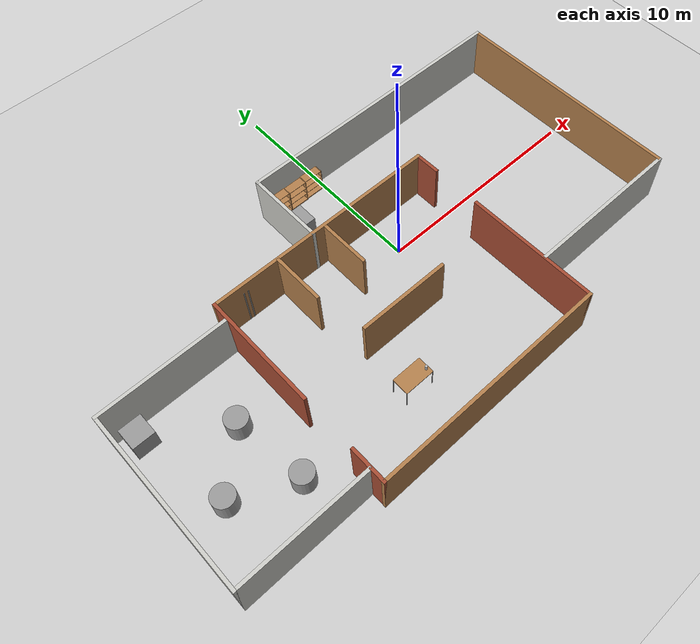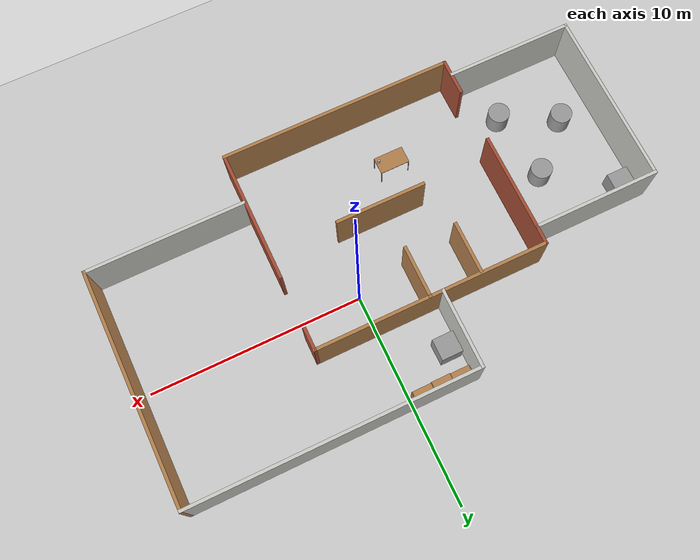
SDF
<sdf version="1.6">
 <world name="default">
  <model name="ground_plane">
   <static>1</static>
   <link name="link">
    <collision name="collision">
     <geometry><plane><normal>0 0 1</normal><size>100 100</size></plane></geometry>
     <surface><friction><ode><mu>100</mu><mu2>50</mu2></ode></friction></surface>
    </collision>
    <visual name="visual">
     <cast_shadows>0</cast_shadows>
     <geometry><plane><normal>0 0 1</normal><size>100 100</size></plane></geometry>
     <material>
      <script><uri>file://media/materials/scripts/gazebo.material</uri><name>Gazebo/Grey</name></script>
     </material>
    </visual>
   </link>
  </model>
  <model name="test_world">
   <pose>-1.78434 -1.17966 0 0 -0 0</pose>
   <link name="Wall_1">
    <collision name="Wall_1_Collision">
     <geometry><box><size>4.25 0.15 2.5</size></box></geometry>
     <pose>0 0 1.25 0 -0 0</pose>
    </collision>
    <visual name="Wall_1_Visual">
     <pose>0 0 1.25 0 -0 0</pose>
     <geometry><box><size>4.25 0.15 2.5</size></box></geometry>
     <material>
      <script><uri>file://media/materials/scripts/gazebo.material</uri><name>Gazebo/Wood</name></script>
      <ambient>1 1 1 1</ambient>
     </material>
    </visual>
    <pose>-0.615659 -1.70034 0 0 -0 3.14159</pose>
   </link>
   <link name="Wall_12">
    <collision name="Wall_12_Collision">
     <geometry><box><size>11 0.15 2.5</size></box></geometry>
     <pose>0 0 1.25 0 -0 0</pose>
    </collision>
    <visual name="Wall_12_Visual">
     <pose>0 0 1.25 0 -0 0</pose>
     <geometry><box><size>11 0.15 2.5</size></box></geometry>
     <material>
      <script><uri>file://media/materials/scripts/gazebo.material</uri><name>Gazebo/Wood</name></script>
      <ambient>1 1 1 1</ambient>
     </material>
    </visual>
    <pose>-0.768184 -6.59875 0 0 -0 0</pose>
   </link>
   <link name="Wall_15">
    <collision name="Wall_15_Collision">
     <geometry><box><size>11 0.15 2.5</size></box></geometry>
     <pose>0 0 1.25 0 -0 0</pose>
    </collision>
    <visual name="Wall_15_Visual">
     <pose>0 0 1.25 0 -0 0</pose>
     <geometry><box><size>11 0.15 2.5</size></box></geometry>
     <material>
      <script><uri>file://media/materials/scripts/gazebo.material</uri><name>Gazebo/Wood</name></script>
      <ambient>1 1 1 1</ambient>
     </material>
    </visual>
    <pose>-0.768184 3.00125 0 0 -0 0</pose>
   </link>
   <link name="Wall_19">
    <collision name="Wall_19_Collision">
     <geometry><box><size>1.25 0.15 2.5</size></box></geometry>
     <pose>0 0 1.25 0 -0 0</pose>
    </collision>
    <visual name="Wall_19_Visual">
     <pose>0 0 1.25 0 -0 0</pose>
     <geometry><box><size>1.25 0.15 2.5</size></box></geometry>
     <material>
      <script><uri>file://media/materials/scripts/gazebo.material</uri><name>Gazebo/Bricks</name></script>
      <ambient>1 1 1 1</ambient>
     </material>
    </visual>
    <pose>4.65682 2.45125 0 0 0 -1.5708</pose>
   </link>
   <link name="Wall_21">
    <collision name="Wall_21_Collision">
     <geometry><box><size>6.25 0.15 2.5</size></box></geometry>
     <pose>0 0 1.25 0 -0 0</pose>
    </collision>
    <visual name="Wall_21_Visual">
     <pose>0 0 1.25 0 -0 0</pose>
     <geometry><box><size>6.25 0.15 2.5</size></box></geometry>
     <material>
      <script><uri>file://media/materials/scripts/gazebo.material</uri><name>Gazebo/Bricks</name></script>
      <ambient>1 1 1 1</ambient>
     </material>
    </visual>
    <pose>4.65682 -3.54875 0 0 -0 1.5708</pose>
   </link>
   <link name="Wall_23">
    <collision name="Wall_23_Collision">
     <geometry><box><size>5.5 0.15 2.5</size></box></geometry>
     <pose>0 0 1.25 0 -0 0</pose>
    </collision>
    <visual name="Wall_23_Visual">
     <pose>0 0 1.25 0 -0 0</pose>
     <geometry><box><size>5.5 0.15 2.5</size></box></geometry>
     <material>
      <script><uri>file://media/materials/scripts/gazebo.material</uri><name>Gazebo/Bricks</name></script>
      <ambient>1 1 1 1</ambient>
     </material>
    </visual>
    <pose>-6.19318 0.326247 0 0 0 -1.5708</pose>
   </link>
   <link name="Wall_25">
    <collision name="Wall_25_Collision">
     <geometry><box><size>1.75 0.15 2.5</size></box></geometry>
     <pose>0 0 1.25 0 -0 0</pose>
    </collision>
    <visual name="Wall_25_Visual">
     <pose>0 0 1.25 0 -0 0</pose>
     <geometry><box><size>1.75 0.15 2.5</size></box></geometry>
     <material>
      <script><uri>file://media/materials/scripts/gazebo.material</uri><name>Gazebo/Bricks</name></script>
      <ambient>1 1 1 1</ambient>
     </material>
    </visual>
    <pose>-6.19318 -5.79875 0 0 -0 1.5708</pose>
   </link>
   <link name="Wall_30">
    <collision name="Wall_30_Collision">
     <geometry><box><size>6 0.15 2.5</size></box></geometry>
     <pose>0 0 1.25 0 -0 0</pose>
    </collision>
    <visual name="Wall_30_Visual">
     <pose>0 0 1.25 0 -0 0</pose>
     <geometry><box><size>6 0.15 2.5</size></box></geometry>
     <material>
      <script><uri>file://media/materials/scripts/gazebo.material</uri><name>Gazebo/CeilingTiled</name></script>
      <ambient>1 1 1 1</ambient>
     </material>
    </visual>
    <pose>-9.15006 2.17634 0 0 -0 3.14159</pose>
   </link>
   <link name="Wall_31">
    <collision name="Wall_31_Collision">
     <geometry><box><size>8.25 0.15 2.5</size></box></geometry>
     <pose>0 0 1.25 0 -0 0</pose>
    </collision>
    <visual name="Wall_31_Visual">
     <pose>0 0 1.25 0 -0 0</pose>
     <geometry><box><size>8.25 0.15 2.5</size></box></geometry>
     <material>
      <script><uri>file://media/materials/scripts/gazebo.material</uri><name>Gazebo/CeilingTiled</name></script>
      <ambient>0.435294 0.796078 0.67451 1</ambient>
     </material>
    </visual>
    <pose>-12.0751 -1.87366 0 0 0 -1.5708</pose>
   </link>
   <link name="Wall_32">
    <collision name="Wall_32_Collision">
     <geometry><box><size>6 0.15 2.5</size></box></geometry>
     <pose>0 0 1.25 0 -0 0</pose>
    </collision>
    <visual name="Wall_32_Visual">
     <pose>0 0 1.25 0 -0 0</pose>
     <geometry><box><size>6 0.15 2.5</size></box></geometry>
     <material>
      <script><uri>file://media/materials/scripts/gazebo.material</uri><name>Gazebo/CeilingTiled</name></script>
      <ambient>1 1 1 1</ambient>
     </material>
    </visual>
    <pose>-9.15006 -5.92366 0 0 -0 0</pose>
   </link>
   <link name="Wall_34">
    <collision name="Wall_34_Collision">
     <geometry><box><size>2.5 0.15 2.5</size></box></geometry>
     <pose>0 0 1.25 0 -0 0</pose>
    </collision>
    <visual name="Wall_34_Visual">
     <pose>0 0 1.25 0 -0 0</pose>
     <geometry><box><size>2.5 0.15 2.5</size></box></geometry>
     <material>
      <script><uri>file://media/materials/scripts/gazebo.material</uri><name>Gazebo/Wood</name></script>
      <ambient>1 1 1 1</ambient>
     </material>
    </visual>
    <pose>-3.10226 1.75436 0 0 0 -1.5708</pose>
   </link>
   <link name="Wall_37">
    <collision name="Wall_37_Collision">
     <geometry><box><size>2.5 0.15 2.5</size></box></geometry>
     <pose>0 0 1.25 0 -0 0</pose>
    </collision>
    <visual name="Wall_37_Visual">
     <pose>0 0 1.25 0 -0 0</pose>
     <geometry><box><size>2.5 0.15 2.5</size></box></geometry>
     <material>
      <script><uri>file://media/materials/scripts/gazebo.material</uri><name>Gazebo/Wood</name></script>
      <ambient>1 1 1 1</ambient>
     </material>
    </visual>
    <pose>-0.673547 1.80062 0 0 0 -1.5708</pose>
   </link>
   <link name="Wall_39">
    <collision name="Wall_39_Collision">
     <geometry><box><size>3.75 0.15 2.5</size></box></geometry>
     <pose>0 0 1.25 0 -0 0</pose>
    </collision>
    <visual name="Wall_39_Visual">
     <pose>0 0 1.25 0 -0 0</pose>
     <geometry><box><size>3.75 0.15 2.5</size></box></geometry>
     <material>
      <script><uri>file://media/materials/scripts/gazebo.material</uri><name>Gazebo/CeilingTiled</name></script>
      <ambient>1 1 1 1</ambient>
     </material>
    </visual>
    <pose>-1.27494 4.79875 0 0 -0 1.5708</pose>
   </link>
   <link name="Wall_40">
    <collision name="Wall_40_Collision">
     <geometry><box><size>13.5 0.15 2.5</size></box></geometry>
     <pose>0 0 1.25 0 -0 0</pose>
    </collision>
    <visual name="Wall_40_Visual">
     <pose>0 0 1.25 0 -0 0</pose>
     <geometry><box><size>13.5 0.15 2.5</size></box></geometry>
     <material>
      <script><uri>file://media/materials/scripts/gazebo.material</uri><name>Gazebo/CeilingTiled</name></script>
      <ambient>1 1 1 1</ambient>
     </material>
    </visual>
    <pose>5.40006 6.59875 0 0 -0 0</pose>
   </link>
   <link name="Wall_41">
    <collision name="Wall_41_Collision">
     <geometry><box><size>11 0.15 2.5</size></box></geometry>
     <pose>0 0 1.25 0 -0 0</pose>
    </collision>
    <visual name="Wall_41_Visual">
     <pose>0 0 1.25 0 -0 0</pose>
     <geometry><box><size>11 0.15 2.5</size></box></geometry>
     <material>
      <script><uri>file://media/materials/scripts/gazebo.material</uri><name>Gazebo/Wood</name></script>
      <ambient>1 1 1 1</ambient>
     </material>
    </visual>
    <pose>12.0751 1.17375 0 0 0 -1.5708</pose>
   </link>
   <link name="Wall_42">
    <collision name="Wall_42_Collision">
     <geometry><box><size>7.5 0.15 2.5</size></box></geometry>
     <pose>0 0 1.25 0 -0 0</pose>
    </collision>
    <visual name="Wall_42_Visual">
     <pose>0 0 1.25 0 -0 0</pose>
     <geometry><box><size>7.5 0.15 2.5</size></box></geometry>
     <material>
      <script><uri>file://media/materials/scripts/gazebo.material</uri><name>Gazebo/CeilingTiled</name></script>
      <ambient>1 1 1 1</ambient>
     </material>
    </visual>
    <pose>8.40006 -4.25125 0 0 -0 3.14159</pose>
   </link>
   <static>1</static>
  </model>
  <model name="table">
   <static>0</static>
   <link name="link">
    <collision name="surface">
     <pose>0 0 1 0 -0 0</pose>
     <geometry><box><size>1.5 0.8 0.03</size></box></geometry>
     <surface><friction><ode><mu>0.6</mu><mu2>0.6</mu2></ode></friction></surface>
    </collision>
    <visual name="visual1">
     <pose>0 0 1 0 -0 0</pose>
     <geometry><box><size>1.4 0.8 0.04</size></box></geometry>
     <material>
      <script><uri>file://media/materials/scripts/gazebo.material</uri><name>Gazebo/Wood</name></script>
     </material>
    </visual>
    <collision name="front_left_leg">
     <pose>0.68 0.38 0.5 0 -0 0</pose>
     <geometry><cylinder><radius>0.02</radius><length>1</length></cylinder></geometry>
    </collision>
    <visual name="front_left_leg">
     <pose>0.68 0.38 0.5 0 -0 0</pose>
     <geometry><cylinder><radius>0.02</radius><length>1</length></cylinder></geometry>
     <material>
      <script><uri>file://media/materials/scripts/gazebo.material</uri><name>Gazebo/Grey</name></script>
     </material>
    </visual>
    <collision name="front_right_leg">
     <pose>0.68 -0.38 0.5 0 -0 0</pose>
     <geometry><cylinder><radius>0.02</radius><length>1</length></cylinder></geometry>
    </collision>
    <visual name="front_right_leg">
     <pose>0.68 -0.38 0.5 0 -0 0</pose>
     <geometry><cylinder><radius>0.02</radius><length>1</length></cylinder></geometry>
     <material>
      <script><uri>file://media/materials/scripts/gazebo.material</uri><name>Gazebo/Grey</name></script>
     </material>
    </visual>
    <collision name="back_right_leg">
     <pose>-0.68 -0.38 0.5 0 -0 0</pose>
     <geometry><cylinder><radius>0.02</radius><length>1</length></cylinder></geometry>
    </collision>
    <visual name="back_right_leg">
     <pose>-0.68 -0.38 0.5 0 -0 0</pose>
     <geometry><cylinder><radius>0.02</radius><length>1</length></cylinder></geometry>
     <material>
      <script><uri>file://media/materials/scripts/gazebo.material</uri><name>Gazebo/Grey</name></script>
     </material>
    </visual>
    <collision name="back_left_leg">
     <pose>-0.68 0.38 0.5 0 -0 0</pose>
     <geometry><cylinder><radius>0.02</radius><length>1</length></cylinder></geometry>
    </collision>
    <visual name="back_left_leg">
     <pose>-0.68 0.38 0.5 0 -0 0</pose>
     <geometry><cylinder><radius>0.02</radius><length>1</length></cylinder></geometry>
     <material>
      <script><uri>file://media/materials/scripts/gazebo.material</uri><name>Gazebo/Grey</name></script>
     </material>
    </visual>
    <inertial>
     <inertia><ixx>1</ixx><ixy>0</ixy><ixz>0</ixz><iyy>1</iyy><iyz>0</iyz><izz>1</izz></inertia>
     <mass>1</mass>
    </inertial>
   </link>
   <pose>-4.01579 -5.0682 -0.019985 0.00133 0.005489 -0.000608</pose>
  </model>
  <model name="bookshelf_1">
   <static>1</static>
   <link name="link">
    <inertial><mass>1</mass></inertial>
    <collision name="back">
     <pose>0 0.005 0.6 0 -0 0</pose>
     <geometry><box><size>0.9 0.01 1.2</size></box></geometry>
    </collision>
    <visual name="visual1">
     <pose>0 0.005 0.6 0 -0 0</pose>
     <geometry><box><size>0.9 0.01 1.2</size></box></geometry>
     <material>
      <script><uri>file://media/materials/scripts/gazebo.material</uri><name>Gazebo/Wood</name></script>
     </material>
    </visual>
    <collision name="left_side">
     <pose>0.45 -0.195 0.6 0 -0 0</pose>
     <geometry><box><size>0.02 0.4 1.2</size></box></geometry>
    </collision>
    <visual name="visual2">
     <pose>0.45 -0.195 0.6 0 -0 0</pose>
     <geometry><box><size>0.02 0.4 1.2</size></box></geometry>
     <material>
      <script><uri>file://media/materials/scripts/gazebo.material</uri><name>Gazebo/Wood</name></script>
     </material>
    </visual>
    <collision name="right_side">
     <pose>-0.45 -0.195 0.6 0 -0 0</pose>
     <geometry><box><size>0.02 0.4 1.2</size></box></geometry>
    </collision>
    <visual name="visual3">
     <pose>-0.45 -0.195 0.6 0 -0 0</pose>
     <geometry><box><size>0.02 0.4 1.2</size></box></geometry>
     <material>
      <script><uri>file://media/materials/scripts/gazebo.material</uri><name>Gazebo/Wood</name></script>
     </material>
    </visual>
    <collision name="bottom">
     <pose>0 -0.195 0.03 0 -0 0</pose>
     <geometry><box><size>0.88 0.4 0.06</size></box></geometry>
    </collision>
    <visual name="visual4">
     <pose>0 -0.195 0.03 0 -0 0</pose>
     <geometry><box><size>0.88 0.4 0.06</size></box></geometry>
     <material>
      <script><uri>file://media/materials/scripts/gazebo.material</uri><name>Gazebo/Wood</name></script>
     </material>
    </visual>
    <collision name="top">
     <pose>0 -0.195 1.19 0 -0 0</pose>
     <geometry><box><size>0.88 0.4 0.02</size></box></geometry>
    </collision>
    <visual name="visual5">
     <pose>0 -0.195 1.19 0 -0 0</pose>
     <geometry><box><size>0.88 0.4 0.02</size></box></geometry>
     <material>
      <script><uri>file://media/materials/scripts/gazebo.material</uri><name>Gazebo/Wood</name></script>
     </material>
    </visual>
    <collision name="low_shelf">
     <pose>0 -0.195 0.43 0 -0 0</pose>
     <geometry><box><size>0.88 0.4 0.02</size></box></geometry>
    </collision>
    <visual name="visual6">
     <pose>0 -0.195 0.43 0 -0 0</pose>
     <geometry><box><size>0.88 0.4 0.02</size></box></geometry>
     <material>
      <script><uri>file://media/materials/scripts/gazebo.material</uri><name>Gazebo/Wood</name></script>
     </material>
    </visual>
    <collision name="high_shelf">
     <pose>0 -0.195 0.8 0 -0 0</pose>
     <geometry><box><size>0.88 0.4 0.02</size></box></geometry>
    </collision>
    <visual name="visual7">
     <pose>0 -0.195 0.8 0 -0 0</pose>
     <geometry><box><size>0.88 0.4 0.02</size></box></geometry>
     <material>
      <script><uri>file://media/materials/scripts/gazebo.material</uri><name>Gazebo/Wood</name></script>
     </material>
    </visual>
   </link>
   <pose>-2.35602 5.3174 0 0 -0 0</pose>
  </model>
  <model name="bookshelf_1_clone">
   <static>1</static>
   <link name="link">
    <inertial><mass>1</mass></inertial>
    <collision name="back">
     <pose>0 0.005 0.6 0 -0 0</pose>
     <geometry><box><size>0.9 0.01 1.2</size></box></geometry>
    </collision>
    <visual name="visual1">
     <pose>0 0.005 0.6 0 -0 0</pose>
     <geometry><box><size>0.9 0.01 1.2</size></box></geometry>
     <material>
      <script><uri>file://media/materials/scripts/gazebo.material</uri><name>Gazebo/Wood</name></script>
     </material>
    </visual>
    <collision name="left_side">
     <pose>0.45 -0.195 0.6 0 -0 0</pose>
     <geometry><box><size>0.02 0.4 1.2</size></box></geometry>
    </collision>
    <visual name="visual2">
     <pose>0.45 -0.195 0.6 0 -0 0</pose>
     <geometry><box><size>0.02 0.4 1.2</size></box></geometry>
     <material>
      <script><uri>file://media/materials/scripts/gazebo.material</uri><name>Gazebo/Wood</name></script>
     </material>
    </visual>
    <collision name="right_side">
     <pose>-0.45 -0.195 0.6 0 -0 0</pose>
     <geometry><box><size>0.02 0.4 1.2</size></box></geometry>
    </collision>
    <visual name="visual3">
     <pose>-0.45 -0.195 0.6 0 -0 0</pose>
     <geometry><box><size>0.02 0.4 1.2</size></box></geometry>
     <material>
      <script><uri>file://media/materials/scripts/gazebo.material</uri><name>Gazebo/Wood</name></script>
     </material>
    </visual>
    <collision name="bottom">
     <pose>0 -0.195 0.03 0 -0 0</pose>
     <geometry><box><size>0.88 0.4 0.06</size></box></geometry>
    </collision>
    <visual name="visual4">
     <pose>0 -0.195 0.03 0 -0 0</pose>
     <geometry><box><size>0.88 0.4 0.06</size></box></geometry>
     <material>
      <script><uri>file://media/materials/scripts/gazebo.material</uri><name>Gazebo/Wood</name></script>
     </material>
    </visual>
    <collision name="top">
     <pose>0 -0.195 1.19 0 -0 0</pose>
     <geometry><box><size>0.88 0.4 0.02</size></box></geometry>
    </collision>
    <visual name="visual5">
     <pose>0 -0.195 1.19 0 -0 0</pose>
     <geometry><box><size>0.88 0.4 0.02</size></box></geometry>
     <material>
      <script><uri>file://media/materials/scripts/gazebo.material</uri><name>Gazebo/Wood</name></script>
     </material>
    </visual>
    <collision name="low_shelf">
     <pose>0 -0.195 0.43 0 -0 0</pose>
     <geometry><box><size>0.88 0.4 0.02</size></box></geometry>
    </collision>
    <visual name="visual6">
     <pose>0 -0.195 0.43 0 -0 0</pose>
     <geometry><box><size>0.88 0.4 0.02</size></box></geometry>
     <material>
      <script><uri>file://media/materials/scripts/gazebo.material</uri><name>Gazebo/Wood</name></script>
     </material>
    </visual>
    <collision name="high_shelf">
     <pose>0 -0.195 0.8 0 -0 0</pose>
     <geometry><box><size>0.88 0.4 0.02</size></box></geometry>
    </collision>
    <visual name="visual7">
     <pose>0 -0.195 0.8 0 -0 0</pose>
     <geometry><box><size>0.88 0.4 0.02</size></box></geometry>
     <material>
      <script><uri>file://media/materials/scripts/gazebo.material</uri><name>Gazebo/Wood</name></script>
     </material>
    </visual>
   </link>
   <pose>-1.47476 5.29885 0 0 -0 0</pose>
  </model>
  <model name="bookshelf_1_clone_0">
   <static>1</static>
   <link name="link">
    <inertial><mass>1</mass></inertial>
    <collision name="back">
     <pose>0 0.005 0.6 0 -0 0</pose>
     <geometry><box><size>0.9 0.01 1.2</size></box></geometry>
    </collision>
    <visual name="visual1">
     <pose>0 0.005 0.6 0 -0 0</pose>
     <geometry><box><size>0.9 0.01 1.2</size></box></geometry>
     <material>
      <script><uri>file://media/materials/scripts/gazebo.material</uri><name>Gazebo/Wood</name></script>
     </material>
    </visual>
    <collision name="left_side">
     <pose>0.45 -0.195 0.6 0 -0 0</pose>
     <geometry><box><size>0.02 0.4 1.2</size></box></geometry>
    </collision>
    <visual name="visual2">
     <pose>0.45 -0.195 0.6 0 -0 0</pose>
     <geometry><box><size>0.02 0.4 1.2</size></box></geometry>
     <material>
      <script><uri>file://media/materials/scripts/gazebo.material</uri><name>Gazebo/Wood</name></script>
     </material>
    </visual>
    <collision name="right_side">
     <pose>-0.45 -0.195 0.6 0 -0 0</pose>
     <geometry><box><size>0.02 0.4 1.2</size></box></geometry>
    </collision>
    <visual name="visual3">
     <pose>-0.45 -0.195 0.6 0 -0 0</pose>
     <geometry><box><size>0.02 0.4 1.2</size></box></geometry>
     <material>
      <script><uri>file://media/materials/scripts/gazebo.material</uri><name>Gazebo/Wood</name></script>
     </material>
    </visual>
    <collision name="bottom">
     <pose>0 -0.195 0.03 0 -0 0</pose>
     <geometry><box><size>0.88 0.4 0.06</size></box></geometry>
    </collision>
    <visual name="visual4">
     <pose>0 -0.195 0.03 0 -0 0</pose>
     <geometry><box><size>0.88 0.4 0.06</size></box></geometry>
     <material>
      <script><uri>file://media/materials/scripts/gazebo.material</uri><name>Gazebo/Wood</name></script>
     </material>
    </visual>
    <collision name="top">
     <pose>0 -0.195 1.19 0 -0 0</pose>
     <geometry><box><size>0.88 0.4 0.02</size></box></geometry>
    </collision>
    <visual name="visual5">
     <pose>0 -0.195 1.19 0 -0 0</pose>
     <geometry><box><size>0.88 0.4 0.02</size></box></geometry>
     <material>
      <script><uri>file://media/materials/scripts/gazebo.material</uri><name>Gazebo/Wood</name></script>
     </material>
    </visual>
    <collision name="low_shelf">
     <pose>0 -0.195 0.43 0 -0 0</pose>
     <geometry><box><size>0.88 0.4 0.02</size></box></geometry>
    </collision>
    <visual name="visual6">
     <pose>0 -0.195 0.43 0 -0 0</pose>
     <geometry><box><size>0.88 0.4 0.02</size></box></geometry>
     <material>
      <script><uri>file://media/materials/scripts/gazebo.material</uri><name>Gazebo/Wood</name></script>
     </material>
    </visual>
    <collision name="high_shelf">
     <pose>0 -0.195 0.8 0 -0 0</pose>
     <geometry><box><size>0.88 0.4 0.02</size></box></geometry>
    </collision>
    <visual name="visual7">
     <pose>0 -0.195 0.8 0 -0 0</pose>
     <geometry><box><size>0.88 0.4 0.02</size></box></geometry>
     <material>
      <script><uri>file://media/materials/scripts/gazebo.material</uri><name>Gazebo/Wood</name></script>
     </material>
    </visual>
   </link>
   <pose>-0.562909 5.32299 0 0 -0 0</pose>
  </model>
  <model name="beer">
   <link name="link">
    <pose>0 0 0.115 0 -0 0</pose>
    <inertial>
     <mass>0.39</mass>
     <inertia><ixx>0.00058</ixx><ixy>0</ixy><ixz>0</ixz><iyy>0.00058</iyy><iyz>0</iyz><izz>0.00019</izz></inertia>
    </inertial>
    <collision name="collision">
     <geometry><cylinder><radius>0.055</radius><length>0.23</length></cylinder></geometry>
    </collision>
    <visual name="visual">
     <geometry><cylinder><radius>0.055</radius><length>0.23</length></cylinder></geometry>
     <material>
      <script>
       <uri>model://beer/materials/scripts</uri>
       <uri>model://beer/materials/textures</uri>
       <name>Beer/Diffuse</name>
      </script>
     </material>
    </visual>
   </link>
   <pose>-3.44186 -5.20673 0.991693 0.004765 0.003571 0.688015</pose>
  </model>
  <model name="unit_box_0">
   <pose>-13.0086 0.313386 0.5 0 -0 0</pose>
   <link name="link">
    <inertial>
     <mass>1</mass>
     <inertia>
      <ixx>0.166667</ixx>
      <ixy>0</ixy>
      <ixz>0</ixz>
      <iyy>0.166667</iyy>
      <iyz>0</iyz>
      <izz>0.166667</izz>
     </inertia>
    </inertial>
    <collision name="collision"><geometry><box><size>1 1 1</size></box></geometry></collision>
    <visual name="visual">
     <geometry><box><size>1 1 1</size></box></geometry>
     <material>
      <script><name>Gazebo/Grey</name><uri>file://media/materials/scripts/gazebo.material</uri></script>
     </material>
    </visual>
   </link>
  </model>
  <model name="unit_box_2">
   <pose>-2.41052 3.74891 0.5 0 -0 0</pose>
   <link name="link">
    <inertial>
     <mass>1</mass>
     <inertia>
      <ixx>0.166667</ixx>
      <ixy>0</ixy>
      <ixz>0</ixz>
      <iyy>0.166667</iyy>
      <iyz>0</iyz>
      <izz>0.166667</izz>
     </inertia>
    </inertial>
    <collision name="collision"><geometry><box><size>1 1 1</size></box></geometry></collision>
    <visual name="visual">
     <geometry><box><size>1 1 1</size></box></geometry>
     <material>
      <script><name>Gazebo/Grey</name><uri>file://media/materials/scripts/gazebo.material</uri></script>
     </material>
    </visual>
   </link>
  </model>
  <model name="boxDaBox">
   <link name="link">
    <inertial>
     <mass>1</mass>
     <inertia>
      <ixx>0.166667</ixx>
      <ixy>0</ixy>
      <ixz>0</ixz>
      <iyy>0.166667</iyy>
      <iyz>0</iyz>
      <izz>0.166667</izz>
     </inertia>
    </inertial>
    <visual name="visual">
     <geometry><box><size>0.0525 0.01 2</size></box></geometry>
     <material>
      <script><name>Gazebo/Grey</name><uri>file://media/materials/scripts/gazebo.material</uri></script>
      <ambient>0.3 0.3 0.3 1</ambient>
      <diffuse>0.7 0.7 0.7 1</diffuse>
      <specular>0.01 0.01 0.01 1</specular>
      <emissive>0 0 0 1</emissive>
      <shader type="vertex"><normal_map>__default__</normal_map></shader>
     </material>
    </visual>
    <collision name="collision">
     <laser_retro>1</laser_retro>
     <geometry><box><size>0.0525 0.01 2</size></box></geometry>
     <surface>
      <friction>
       <ode><mu>1</mu><mu2>1</mu2><fdir1>0 0 0</fdir1><slip1>0</slip1><slip2>0</slip2></ode>
       <torsional>
        <coefficient>1</coefficient>
        <patch_radius>0</patch_radius>
        <surface_radius>0</surface_radius>
        <use_patch_radius>1</use_patch_radius>
        <ode><slip>0</slip></ode>
       </torsional>
      </friction>
      <bounce><restitution_coefficient>0</restitution_coefficient><threshold>1e+06</threshold></bounce>
      <contact>
       <collide_without_contact>0</collide_without_contact>
       <collide_without_contact_bitmask>1</collide_without_contact_bitmask>
       <collide_bitmask>1</collide_bitmask>
       <ode>
        <soft_cfm>0</soft_cfm>
        <soft_erp>0.2</soft_erp>
        <kp>1e+13</kp>
        <kd>1</kd>
        <max_vel>0.01</max_vel>
        <min_depth>0</min_depth>
       </ode>
       <bullet>
        <split_impulse>1</split_impulse>
        <split_impulse_penetration_threshold>-0.01</split_impulse_penetration_threshold>
        <soft_cfm>0</soft_cfm>
        <soft_erp>0.2</soft_erp>
        <kp>1e+13</kp>
        <kd>1</kd>
       </bullet>
      </contact>
     </surface>
    </collision>
   </link>
   <static>0</static>
   <pose>-6.52165 1.73709 1 -5e-06 2e-06 0.000301</pose>
  </model>
  <model name="boxDaBox_0">
   <link name="link">
    <inertial>
     <mass>1</mass>
     <inertia>
      <ixx>0.166667</ixx>
      <ixy>0</ixy>
      <ixz>0</ixz>
      <iyy>0.166667</iyy>
      <iyz>0</iyz>
      <izz>0.166667</izz>
     </inertia>
    </inertial>
    <visual name="visual">
     <geometry><box><size>0.0525 0.01 2</size></box></geometry>
     <material>
      <script><name>Gazebo/Grey</name><uri>file://media/materials/scripts/gazebo.material</uri></script>
      <ambient>0.3 0.3 0.3 1</ambient>
      <diffuse>0.7 0.7 0.7 1</diffuse>
      <specular>0.01 0.01 0.01 1</specular>
      <emissive>0 0 0 1</emissive>
      <shader type="vertex"><normal_map>__default__</normal_map></shader>
     </material>
    </visual>
    <collision name="collision">
     <laser_retro>1</laser_retro>
     <geometry><box><size>0.0525 0.01 2</size></box></geometry>
     <surface>
      <friction>
       <ode><mu>1</mu><mu2>1</mu2><fdir1>0 0 0</fdir1><slip1>0</slip1><slip2>0</slip2></ode>
       <torsional>
        <coefficient>1</coefficient>
        <patch_radius>0</patch_radius>
        <surface_radius>0</surface_radius>
        <use_patch_radius>1</use_patch_radius>
        <ode><slip>0</slip></ode>
       </torsional>
      </friction>
      <bounce><restitution_coefficient>0</restitution_coefficient><threshold>1e+06</threshold></bounce>
      <contact>
       <collide_without_contact>0</collide_without_contact>
       <collide_without_contact_bitmask>1</collide_without_contact_bitmask>
       <collide_bitmask>1</collide_bitmask>
       <ode>
        <soft_cfm>0</soft_cfm>
        <soft_erp>0.2</soft_erp>
        <kp>1e+13</kp>
        <kd>1</kd>
        <max_vel>0.01</max_vel>
        <min_depth>0</min_depth>
       </ode>
       <bullet>
        <split_impulse>1</split_impulse>
        <split_impulse_penetration_threshold>-0.01</split_impulse_penetration_threshold>
        <soft_cfm>0</soft_cfm>
        <soft_erp>0.2</soft_erp>
        <kp>1e+13</kp>
        <kd>1</kd>
       </bullet>
      </contact>
     </surface>
    </collision>
   </link>
   <static>0</static>
   <pose>-6.72167 1.73706 1 9e-06 0 -0.00041</pose>
  </model>
  <model name="unit_cylinder_0_0">
   <link name="link">
    <inertial>
     <mass>1</mass>
     <inertia><ixx>0.145833</ixx><ixy>0</ixy><ixz>0</ixz><iyy>0.145833</iyy><iyz>0</iyz><izz>0.125</izz></inertia>
    </inertial>
    <visual name="visual">
     <geometry><cylinder><radius>0.5</radius><length>1</length></cylinder></geometry>
     <material>
      <script><name>Gazebo/Grey</name><uri>file://media/materials/scripts/gazebo.material</uri></script>
      <ambient>0.3 0.3 0.3 1</ambient>
      <diffuse>0.7 0.7 0.7 1</diffuse>
      <specular>0.01 0.01 0.01 1</specular>
      <emissive>0 0 0 1</emissive>
      <shader type="vertex"><normal_map>__default__</normal_map></shader>
     </material>
    </visual>
    <collision name="collision">
     <geometry><cylinder><radius>0.5</radius><length>1</length></cylinder></geometry>
     <surface>
      <friction>
       <ode><mu>1</mu><mu2>1</mu2><fdir1>0 0 0</fdir1><slip1>0</slip1><slip2>0</slip2></ode>
       <torsional>
        <coefficient>1</coefficient>
        <patch_radius>0</patch_radius>
        <surface_radius>0</surface_radius>
        <use_patch_radius>1</use_patch_radius>
        <ode><slip>0</slip></ode>
       </torsional>
      </friction>
      <bounce><restitution_coefficient>0</restitution_coefficient><threshold>1e+06</threshold></bounce>
      <contact>
       <collide_without_contact>0</collide_without_contact>
       <collide_without_contact_bitmask>1</collide_without_contact_bitmask>
       <collide_bitmask>1</collide_bitmask>
       <ode>
        <soft_cfm>0</soft_cfm>
        <soft_erp>0.2</soft_erp>
        <kp>1e+13</kp>
        <kd>1</kd>
        <max_vel>0.01</max_vel>
        <min_depth>0</min_depth>
       </ode>
       <bullet>
        <split_impulse>1</split_impulse>
        <split_impulse_penetration_threshold>-0.01</split_impulse_penetration_threshold>
        <soft_cfm>0</soft_cfm>
        <soft_erp>0.2</soft_erp>
        <kp>1e+13</kp>
        <kd>1</kd>
       </bullet>
      </contact>
     </surface>
    </collision>
   </link>
   <static>0</static>
   <pose>-9.55509 -5.07728 0.499992 -3e-06 1e-06 0</pose>
  </model>
  <model name="unit_cylinder_2_0">
   <link name="link">
    <inertial>
     <mass>1</mass>
     <inertia><ixx>0.145833</ixx><ixy>0</ixy><ixz>0</ixz><iyy>0.145833</iyy><iyz>0</iyz><izz>0.125</izz></inertia>
    </inertial>
    <visual name="visual">
     <geometry><cylinder><radius>0.5</radius><length>1</length></cylinder></geometry>
     <material>
      <script><name>Gazebo/Grey</name><uri>file://media/materials/scripts/gazebo.material</uri></script>
      <ambient>0.3 0.3 0.3 1</ambient>
      <diffuse>0.7 0.7 0.7 1</diffuse>
      <specular>0.01 0.01 0.01 1</specular>
      <emissive>0 0 0 1</emissive>
      <shader type="vertex"><normal_map>__default__</normal_map></shader>
     </material>
    </visual>
    <collision name="collision">
     <geometry><cylinder><radius>0.5</radius><length>1</length></cylinder></geometry>
     <surface>
      <friction>
       <ode><mu>1</mu><mu2>1</mu2><fdir1>0 0 0</fdir1><slip1>0</slip1><slip2>0</slip2></ode>
       <torsional>
        <coefficient>1</coefficient>
        <patch_radius>0</patch_radius>
        <surface_radius>0</surface_radius>
        <use_patch_radius>1</use_patch_radius>
        <ode><slip>0</slip></ode>
       </torsional>
      </friction>
      <bounce><restitution_coefficient>0</restitution_coefficient><threshold>1e+06</threshold></bounce>
      <contact>
       <collide_without_contact>0</collide_without_contact>
       <collide_without_contact_bitmask>1</collide_without_contact_bitmask>
       <collide_bitmask>1</collide_bitmask>
       <ode>
        <soft_cfm>0</soft_cfm>
        <soft_erp>0.2</soft_erp>
        <kp>1e+13</kp>
        <kd>1</kd>
        <max_vel>0.01</max_vel>
        <min_depth>0</min_depth>
       </ode>
       <bullet>
        <split_impulse>1</split_impulse>
        <split_impulse_penetration_threshold>-0.01</split_impulse_penetration_threshold>
        <soft_cfm>0</soft_cfm>
        <soft_erp>0.2</soft_erp>
        <kp>1e+13</kp>
        <kd>1</kd>
       </bullet>
      </contact>
     </surface>
    </collision>
   </link>
   <static>0</static>
   <pose>-10.006 -1.76159 0.499992 -3e-06 1e-06 0</pose>
  </model>
  <model name="unit_cylinder_1_0">
   <link name="link">
    <inertial>
     <mass>1</mass>
     <inertia><ixx>0.145833</ixx><ixy>0</ixy><ixz>0</ixz><iyy>0.145833</iyy><iyz>0</iyz><izz>0.125</izz></inertia>
    </inertial>
    <visual name="visual">
     <geometry><cylinder><radius>0.5</radius><length>1</length></cylinder></geometry>
     <material>
      <script><name>Gazebo/Grey</name><uri>file://media/materials/scripts/gazebo.material</uri></script>
      <ambient>0.3 0.3 0.3 1</ambient>
      <diffuse>0.7 0.7 0.7 1</diffuse>
      <specular>0.01 0.01 0.01 1</specular>
      <emissive>0 0 0 1</emissive>
     </material>
    </visual>
    <collision name="collision">
     <geometry><cylinder><radius>0.5</radius><length>1</length></cylinder></geometry>
     <surface>
      <friction>
       <ode><mu>1</mu><mu2>1</mu2><fdir1>0 0 0</fdir1><slip1>0</slip1><slip2>0</slip2></ode>
       <torsional>
        <coefficient>1</coefficient>
        <patch_radius>0</patch_radius>
        <surface_radius>0</surface_radius>
        <use_patch_radius>1</use_patch_radius>
        <ode><slip>0</slip></ode>
       </torsional>
      </friction>
      <bounce><restitution_coefficient>0</restitution_coefficient><threshold>1e+06</threshold></bounce>
      <contact>
       <collide_without_contact>0</collide_without_contact>
       <collide_without_contact_bitmask>1</collide_without_contact_bitmask>
       <collide_bitmask>1</collide_bitmask>
       <ode>
        <soft_cfm>0</soft_cfm>
        <soft_erp>0.2</soft_erp>
        <kp>1e+13</kp>
        <kd>1</kd>
        <max_vel>0.01</max_vel>
        <min_depth>0</min_depth>
       </ode>
       <bullet>
        <split_impulse>1</split_impulse>
        <split_impulse_penetration_threshold>-0.01</split_impulse_penetration_threshold>
        <soft_cfm>0</soft_cfm>
        <soft_erp>0.2</soft_erp>
        <kp>1e+13</kp>
        <kd>1</kd>
       </bullet>
      </contact>
     </surface>
    </collision>
   </link>
   <static>0</static>
   <pose>-12.1573 -3.81544 0.499992 -3e-06 1e-06 0</pose>
  </model>
 </world>
</sdf>
